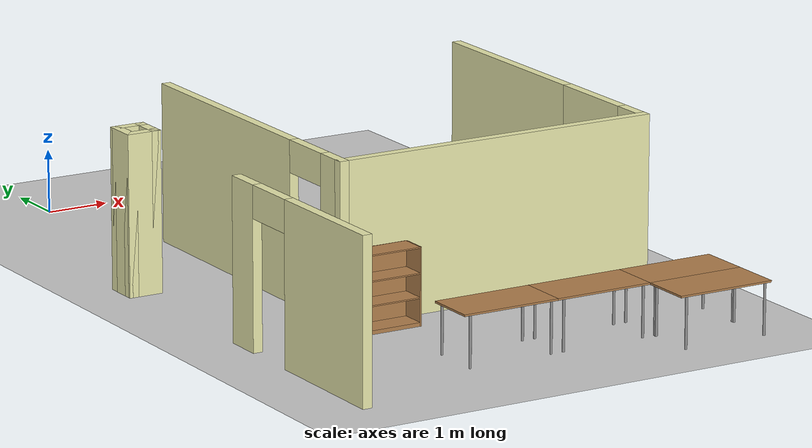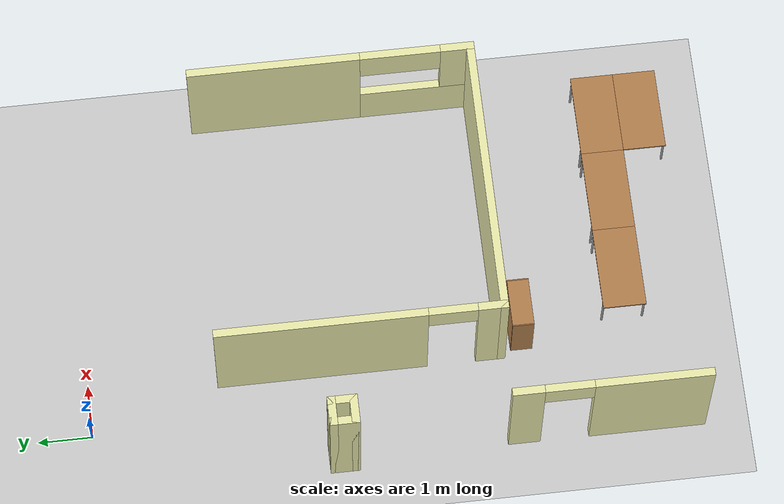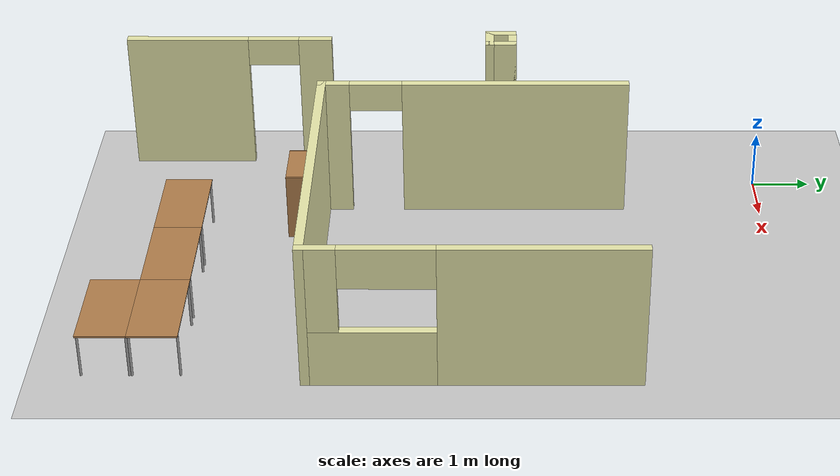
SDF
<sdf version="1.6">
 <world name="default">
  <model name="ground_plane">
   <static>1</static>
   <link name="link">
    <collision name="collision">
     <geometry><plane><normal>0 0 1</normal><size>100 100</size></plane></geometry>
     <surface><friction><ode><mu>100</mu><mu2>50</mu2></ode></friction></surface>
    </collision>
    <visual name="visual">
     <cast_shadows>0</cast_shadows>
     <geometry><plane><normal>0 0 1</normal><size>100 100</size></plane></geometry>
     <material>
      <script><uri>file://media/materials/scripts/gazebo.material</uri><name>Gazebo/Grey</name></script>
     </material>
    </visual>
   </link>
  </model>
  <model name="Building">
   <link name="Wall_10">
    <pose>6 -5.06361 0 0 0 -1.5708</pose>
    <visual name="Wall_10_Visual_0">
     <pose>-1.06584 0 1.25 0 -0 0</pose>
     <geometry><box><size>3.21833 0.15 2.5</size></box></geometry>
     <material>
      <script><uri>file://media/materials/scripts/gazebo.material</uri><name>Gazebo/Grey</name></script>
      <ambient>0.92 0.92 0.68 1</ambient>
     </material>
     <meta><layer>0</layer></meta>
    </visual>
    <collision name="Wall_10_Collision_0">
     <geometry><box><size>3.21833 0.15 2.5</size></box></geometry>
     <pose>-1.06584 0 1.25 0 -0 0</pose>
    </collision>
    <visual name="Wall_10_Visual_1">
     <pose>1.60916 0 0.5 0 -0 0</pose>
     <geometry><box><size>2.13167 0.15 1</size></box></geometry>
     <material>
      <script><uri>file://media/materials/scripts/gazebo.material</uri><name>Gazebo/Grey</name></script>
      <ambient>0.92 0.92 0.68 1</ambient>
     </material>
     <meta><layer>0</layer></meta>
    </visual>
    <collision name="Wall_10_Collision_1">
     <geometry><box><size>2.13167 0.15 1</size></box></geometry>
     <pose>1.60916 0 0.5 0 -0 0</pose>
    </collision>
    <visual name="Wall_10_Visual_2">
     <pose>2.35916 0 1.75 0 -0 0</pose>
     <geometry><box><size>0.631674 0.15 1.5</size></box></geometry>
     <material>
      <script><uri>file://media/materials/scripts/gazebo.material</uri><name>Gazebo/Grey</name></script>
      <ambient>0.92 0.92 0.68 1</ambient>
     </material>
     <meta><layer>0</layer></meta>
    </visual>
    <collision name="Wall_10_Collision_2">
     <geometry><box><size>0.631674 0.15 1.5</size></box></geometry>
     <pose>2.35916 0 1.75 0 -0 0</pose>
    </collision>
    <visual name="Wall_10_Visual_3">
     <pose>1.29333 0 2.15 0 -0 0</pose>
     <geometry><box><size>1.5 0.15 0.7</size></box></geometry>
     <material>
      <script><uri>file://media/materials/scripts/gazebo.material</uri><name>Gazebo/Grey</name></script>
      <ambient>0.92 0.92 0.68 1</ambient>
     </material>
     <meta><layer>0</layer></meta>
    </visual>
    <collision name="Wall_10_Collision_3">
     <geometry><box><size>1.5 0.15 0.7</size></box></geometry>
     <pose>1.29333 0 2.15 0 -0 0</pose>
    </collision>
   </link>
   <link name="Wall_4">
    <collision name="Wall_4_Collision">
     <geometry><box><size>5.35 0.15 2.5</size></box></geometry>
     <pose>0 0 1.25 0 -0 0</pose>
    </collision>
    <visual name="Wall_4_Visual">
     <pose>0 0 1.25 0 -0 0</pose>
     <geometry><box><size>5.35 0.15 2.5</size></box></geometry>
     <material>
      <script><uri>file://media/materials/scripts/gazebo.material</uri><name>Gazebo/Grey</name></script>
      <ambient>0.92 0.92 0.68 1</ambient>
     </material>
     <meta><layer>0</layer></meta>
    </visual>
    <pose>3.4 -7.66361 0 0 -0 0</pose>
   </link>
   <link name="Wall_57">
    <pose>-0.9 -9.41361 0 0 0 -1.5708</pose>
    <visual name="Wall_57_Visual_0">
     <pose>-1.52984 0 1.25 0 -0 0</pose>
     <geometry><box><size>0.59032 0.15 2.5</size></box></geometry>
     <material>
      <script><uri>file://media/materials/scripts/gazebo.material</uri><name>Gazebo/Grey</name></script>
      <ambient>0.92 0.92 0.68 1</ambient>
     </material>
     <meta><layer>0</layer></meta>
    </visual>
    <collision name="Wall_57_Collision_0">
     <geometry><box><size>0.59032 0.15 2.5</size></box></geometry>
     <pose>-1.52984 0 1.25 0 -0 0</pose>
    </collision>
    <visual name="Wall_57_Visual_1">
     <pose>0.74516 0 1.25 0 -0 0</pose>
     <geometry><box><size>2.15968 0.15 2.5</size></box></geometry>
     <material>
      <script><uri>file://media/materials/scripts/gazebo.material</uri><name>Gazebo/Grey</name></script>
      <ambient>0.92 0.92 0.68 1</ambient>
     </material>
     <meta><layer>0</layer></meta>
    </visual>
    <collision name="Wall_57_Collision_1">
     <geometry><box><size>2.15968 0.15 2.5</size></box></geometry>
     <pose>0.74516 0 1.25 0 -0 0</pose>
    </collision>
    <visual name="Wall_57_Visual_2">
     <pose>-0.78468 0 2.25 0 -0 0</pose>
     <geometry><box><size>0.9 0.15 0.5</size></box></geometry>
     <material>
      <script><uri>file://media/materials/scripts/gazebo.material</uri><name>Gazebo/Grey</name></script>
      <ambient>0.92 0.92 0.68 1</ambient>
     </material>
     <meta><layer>0</layer></meta>
    </visual>
    <collision name="Wall_57_Collision_2">
     <geometry><box><size>0.9 0.15 0.5</size></box></geometry>
     <pose>-0.78468 0 2.25 0 -0 0</pose>
    </collision>
   </link>
   <link name="Wall_6">
    <pose>0.8 -5.06361 0 0 -0 1.5708</pose>
    <visual name="Wall_6_Visual_0">
     <pose>-2.39762 0 1.25 0 -0 0</pose>
     <geometry><box><size>0.55477 0.15 2.5</size></box></geometry>
     <material>
      <script><uri>file://media/materials/scripts/gazebo.material</uri><name>Gazebo/Grey</name></script>
      <ambient>0.92 0.92 0.68 1</ambient>
     </material>
     <meta><layer>0</layer></meta>
    </visual>
    <collision name="Wall_6_Collision_0">
     <geometry><box><size>0.55477 0.15 2.5</size></box></geometry>
     <pose>-2.39762 0 1.25 0 -0 0</pose>
    </collision>
    <visual name="Wall_6_Visual_1">
     <pose>0.727385 0 1.25 0 -0 0</pose>
     <geometry><box><size>3.89523 0.15 2.5</size></box></geometry>
     <material>
      <script><uri>file://media/materials/scripts/gazebo.material</uri><name>Gazebo/Grey</name></script>
      <ambient>0.92 0.92 0.68 1</ambient>
     </material>
     <meta><layer>0</layer></meta>
    </visual>
    <collision name="Wall_6_Collision_1">
     <geometry><box><size>3.89523 0.15 2.5</size></box></geometry>
     <pose>0.727385 0 1.25 0 -0 0</pose>
    </collision>
    <visual name="Wall_6_Visual_2">
     <pose>-1.67023 0 2.25 0 -0 0</pose>
     <geometry><box><size>0.9 0.15 0.5</size></box></geometry>
     <material>
      <script><uri>file://media/materials/scripts/gazebo.material</uri><name>Gazebo/Grey</name></script>
      <ambient>0.92 0.92 0.68 1</ambient>
     </material>
     <meta><layer>0</layer></meta>
    </visual>
    <collision name="Wall_6_Collision_2">
     <geometry><box><size>0.9 0.15 0.5</size></box></geometry>
     <pose>-1.67023 0 2.25 0 -0 0</pose>
    </collision>
   </link>
   <link name="Wall_80">
    <collision name="Wall_80_Collision">
     <geometry><box><size>0.55 0.15 2.5</size></box></geometry>
     <pose>0 0 1.25 0 -0 0</pose>
    </collision>
    <visual name="Wall_80_Visual">
     <pose>0 0 1.25 0 -0 0</pose>
     <geometry><box><size>0.55 0.15 2.5</size></box></geometry>
     <material>
      <script><uri>file://media/materials/scripts/gazebo.material</uri><name>Gazebo/Grey</name></script>
      <ambient>0.92 0.92 0.68 1</ambient>
     </material>
     <meta><layer>0</layer></meta>
    </visual>
    <pose>-0.9 -4.76361 0 0 -0 0</pose>
   </link>
   <link name="Wall_82">
    <collision name="Wall_82_Collision">
     <geometry><box><size>0.55 0.15 2.5</size></box></geometry>
     <pose>0 0 1.25 0 -0 0</pose>
    </collision>
    <visual name="Wall_82_Visual">
     <pose>0 0 1.25 0 -0 0</pose>
     <geometry><box><size>0.55 0.15 2.5</size></box></geometry>
     <material>
      <script><uri>file://media/materials/scripts/gazebo.material</uri><name>Gazebo/Grey</name></script>
      <ambient>0.92 0.92 0.68 1</ambient>
     </material>
     <meta><layer>0</layer></meta>
    </visual>
    <pose>-0.9 -4.36361 0 0 -0 0</pose>
   </link>
   <link name="Wall_84">
    <collision name="Wall_84_Collision">
     <geometry><box><size>0.55 0.15 2.5</size></box></geometry>
     <pose>0 0 1.25 0 -0 0</pose>
    </collision>
    <visual name="Wall_84_Visual">
     <pose>0 0 1.25 0 -0 0</pose>
     <geometry><box><size>0.55 0.15 2.5</size></box></geometry>
     <material>
      <script><uri>file://media/materials/scripts/gazebo.material</uri><name>Gazebo/Grey</name></script>
      <ambient>0.92 0.92 0.68 1</ambient>
     </material>
     <meta><layer>0</layer></meta>
    </visual>
    <pose>-1.1 -4.56361 0 0 0 -1.5708</pose>
   </link>
   <link name="Wall_86">
    <collision name="Wall_86_Collision">
     <geometry><box><size>0.55 0.15 2.5</size></box></geometry>
     <pose>0 0 1.25 0 -0 0</pose>
    </collision>
    <visual name="Wall_86_Visual">
     <pose>0 0 1.25 0 -0 0</pose>
     <geometry><box><size>0.55 0.15 2.5</size></box></geometry>
     <material>
      <script><uri>file://media/materials/scripts/gazebo.material</uri><name>Gazebo/Grey</name></script>
      <ambient>0.92 0.92 0.68 1</ambient>
     </material>
     <meta><layer>0</layer></meta>
    </visual>
    <pose>-0.7 -4.56361 0 0 0 -1.5708</pose>
   </link>
   <static>1</static>
  </model>
  <model name="tablealt_0_clone_42">
   <link name="link">
    <inertial>
     <mass>1</mass>
     <inertia><ixx>1</ixx><ixy>0</ixy><ixz>0</ixz><iyy>1</iyy><iyz>0</iyz><izz>1</izz></inertia>
    </inertial>
    <visual name="back_right_leg">
     <pose>-0.68 -0.38 0.4 0 -0 0</pose>
     <geometry><cylinder><radius>0.02</radius><length>0.8</length></cylinder></geometry>
     <material>
      <script><uri>file://media/materials/scripts/gazebo.material</uri><name>Gazebo/Grey</name></script>
      <shader type="pixel"><normal_map>__default__</normal_map></shader>
      <ambient>0.3 0.3 0.3 1</ambient>
      <diffuse>0.7 0.7 0.7 1</diffuse>
      <specular>0.01 0.01 0.01 1</specular>
      <emissive>0 0 0 1</emissive>
     </material>
    </visual>
    <visual name="back_left_leg">
     <pose>-0.68 0.38 0.4 0 -0 0</pose>
     <geometry><cylinder><radius>0.02</radius><length>0.8</length></cylinder></geometry>
     <material>
      <script><uri>file://media/materials/scripts/gazebo.material</uri><name>Gazebo/Grey</name></script>
      <shader type="pixel"><normal_map>__default__</normal_map></shader>
      <ambient>0.3 0.3 0.3 1</ambient>
      <diffuse>0.7 0.7 0.7 1</diffuse>
      <specular>0.01 0.01 0.01 1</specular>
      <emissive>0 0 0 1</emissive>
     </material>
    </visual>
    <visual name="visual1">
     <pose>0 0 0.8 0 -0 0</pose>
     <geometry><box><size>1.57 0.8 0.03</size></box></geometry>
     <material>
      <script><uri>file://media/materials/scripts/gazebo.material</uri><name>Gazebo/Wood</name></script>
      <shader type="pixel"><normal_map>__default__</normal_map></shader>
      <ambient>0.92 0.92 0.68 1</ambient>
      <diffuse>1 1 1 1</diffuse>
      <specular>0.2 0.2 0.2 1</specular>
      <emissive>0 0 0 1</emissive>
     </material>
    </visual>
    <visual name="front_left_leg">
     <pose>0.68 0.38 0.4 0 -0 0</pose>
     <geometry><cylinder><radius>0.02</radius><length>0.8</length></cylinder></geometry>
     <material>
      <script><uri>file://media/materials/scripts/gazebo.material</uri><name>Gazebo/Grey</name></script>
      <shader type="pixel"><normal_map>__default__</normal_map></shader>
      <ambient>0.3 0.3 0.3 1</ambient>
      <diffuse>0.7 0.7 0.7 1</diffuse>
      <specular>0.01 0.01 0.01 1</specular>
      <emissive>0 0 0 1</emissive>
     </material>
    </visual>
    <visual name="front_right_leg">
     <pose>0.68 -0.38 0.4 0 -0 0</pose>
     <geometry><cylinder><radius>0.02</radius><length>0.8</length></cylinder></geometry>
     <material>
      <script><uri>file://media/materials/scripts/gazebo.material</uri><name>Gazebo/Grey</name></script>
      <shader type="pixel"><normal_map>__default__</normal_map></shader>
      <ambient>0.3 0.3 0.3 1</ambient>
      <diffuse>0.7 0.7 0.7 1</diffuse>
      <specular>0.01 0.01 0.01 1</specular>
      <emissive>0 0 0 1</emissive>
     </material>
    </visual>
    <collision name="front_right_leg">
     <pose>0.68 -0.38 0.4 0 -0 0</pose>
     <geometry><cylinder><radius>0.02</radius><length>0.8</length></cylinder></geometry>
     <surface>
      <friction>
       <ode><mu>1</mu><mu2>1</mu2><fdir1>0 0 0</fdir1><slip1>0</slip1><slip2>0</slip2></ode>
       <torsional>
        <coefficient>1</coefficient>
        <patch_radius>0</patch_radius>
        <surface_radius>0</surface_radius>
        <use_patch_radius>1</use_patch_radius>
        <ode><slip>0</slip></ode>
       </torsional>
      </friction>
      <bounce><restitution_coefficient>0</restitution_coefficient><threshold>1e+06</threshold></bounce>
      <contact>
       <collide_without_contact>0</collide_without_contact>
       <collide_without_contact_bitmask>1</collide_without_contact_bitmask>
       <collide_bitmask>1</collide_bitmask>
       <ode>
        <soft_cfm>0</soft_cfm>
        <soft_erp>0.2</soft_erp>
        <kp>1e+13</kp>
        <kd>1</kd>
        <max_vel>0.01</max_vel>
        <min_depth>0</min_depth>
       </ode>
       <bullet>
        <split_impulse>1</split_impulse>
        <split_impulse_penetration_threshold>-0.01</split_impulse_penetration_threshold>
        <soft_cfm>0</soft_cfm>
        <soft_erp>0.2</soft_erp>
        <kp>1e+13</kp>
        <kd>1</kd>
       </bullet>
      </contact>
     </surface>
    </collision>
    <collision name="surface">
     <pose>0 0 0.8 0 -0 0</pose>
     <geometry><box><size>1.5 0.8 0.03</size></box></geometry>
     <surface>
      <friction>
       <ode><mu>0.6</mu><mu2>0.6</mu2><fdir1>0 0 0</fdir1><slip1>0</slip1><slip2>0</slip2></ode>
       <torsional>
        <coefficient>1</coefficient>
        <patch_radius>0</patch_radius>
        <surface_radius>0</surface_radius>
        <use_patch_radius>1</use_patch_radius>
        <ode><slip>0</slip></ode>
       </torsional>
      </friction>
      <bounce><restitution_coefficient>0</restitution_coefficient><threshold>1e+06</threshold></bounce>
      <contact>
       <collide_without_contact>0</collide_without_contact>
       <collide_without_contact_bitmask>1</collide_without_contact_bitmask>
       <collide_bitmask>1</collide_bitmask>
       <ode>
        <soft_cfm>0</soft_cfm>
        <soft_erp>0.2</soft_erp>
        <kp>1e+13</kp>
        <kd>1</kd>
        <max_vel>0.01</max_vel>
        <min_depth>0</min_depth>
       </ode>
       <bullet>
        <split_impulse>1</split_impulse>
        <split_impulse_penetration_threshold>-0.01</split_impulse_penetration_threshold>
        <soft_cfm>0</soft_cfm>
        <soft_erp>0.2</soft_erp>
        <kp>1e+13</kp>
        <kd>1</kd>
       </bullet>
      </contact>
     </surface>
    </collision>
    <collision name="front_left_leg">
     <pose>0.68 0.38 0.4 0 -0 0</pose>
     <geometry><cylinder><radius>0.02</radius><length>0.8</length></cylinder></geometry>
     <surface>
      <friction>
       <ode><mu>1</mu><mu2>1</mu2><fdir1>0 0 0</fdir1><slip1>0</slip1><slip2>0</slip2></ode>
       <torsional>
        <coefficient>1</coefficient>
        <patch_radius>0</patch_radius>
        <surface_radius>0</surface_radius>
        <use_patch_radius>1</use_patch_radius>
        <ode><slip>0</slip></ode>
       </torsional>
      </friction>
      <bounce><restitution_coefficient>0</restitution_coefficient><threshold>1e+06</threshold></bounce>
      <contact>
       <collide_without_contact>0</collide_without_contact>
       <collide_without_contact_bitmask>1</collide_without_contact_bitmask>
       <collide_bitmask>1</collide_bitmask>
       <ode>
        <soft_cfm>0</soft_cfm>
        <soft_erp>0.2</soft_erp>
        <kp>1e+13</kp>
        <kd>1</kd>
        <max_vel>0.01</max_vel>
        <min_depth>0</min_depth>
       </ode>
       <bullet>
        <split_impulse>1</split_impulse>
        <split_impulse_penetration_threshold>-0.01</split_impulse_penetration_threshold>
        <soft_cfm>0</soft_cfm>
        <soft_erp>0.2</soft_erp>
        <kp>1e+13</kp>
        <kd>1</kd>
       </bullet>
      </contact>
     </surface>
    </collision>
    <collision name="back_left_leg">
     <pose>-0.68 0.38 0.4 0 -0 0</pose>
     <geometry><cylinder><radius>0.02</radius><length>0.8</length></cylinder></geometry>
     <surface>
      <friction>
       <ode><mu>1</mu><mu2>1</mu2><fdir1>0 0 0</fdir1><slip1>0</slip1><slip2>0</slip2></ode>
       <torsional>
        <coefficient>1</coefficient>
        <patch_radius>0</patch_radius>
        <surface_radius>0</surface_radius>
        <use_patch_radius>1</use_patch_radius>
        <ode><slip>0</slip></ode>
       </torsional>
      </friction>
      <bounce><restitution_coefficient>0</restitution_coefficient><threshold>1e+06</threshold></bounce>
      <contact>
       <collide_without_contact>0</collide_without_contact>
       <collide_without_contact_bitmask>1</collide_without_contact_bitmask>
       <collide_bitmask>1</collide_bitmask>
       <ode>
        <soft_cfm>0</soft_cfm>
        <soft_erp>0.2</soft_erp>
        <kp>1e+13</kp>
        <kd>1</kd>
        <max_vel>0.01</max_vel>
        <min_depth>0</min_depth>
       </ode>
       <bullet>
        <split_impulse>1</split_impulse>
        <split_impulse_penetration_threshold>-0.01</split_impulse_penetration_threshold>
        <soft_cfm>0</soft_cfm>
        <soft_erp>0.2</soft_erp>
        <kp>1e+13</kp>
        <kd>1</kd>
       </bullet>
      </contact>
     </surface>
    </collision>
    <collision name="back_right_leg">
     <pose>-0.68 -0.38 0.4 0 -0 0</pose>
     <geometry><cylinder><radius>0.02</radius><length>0.8</length></cylinder></geometry>
     <surface>
      <friction>
       <ode><mu>1</mu><mu2>1</mu2><fdir1>0 0 0</fdir1><slip1>0</slip1><slip2>0</slip2></ode>
       <torsional>
        <coefficient>1</coefficient>
        <patch_radius>0</patch_radius>
        <surface_radius>0</surface_radius>
        <use_patch_radius>1</use_patch_radius>
        <ode><slip>0</slip></ode>
       </torsional>
      </friction>
      <bounce><restitution_coefficient>0</restitution_coefficient><threshold>1e+06</threshold></bounce>
      <contact>
       <collide_without_contact>0</collide_without_contact>
       <collide_without_contact_bitmask>1</collide_without_contact_bitmask>
       <collide_bitmask>1</collide_bitmask>
       <ode>
        <soft_cfm>0</soft_cfm>
        <soft_erp>0.2</soft_erp>
        <kp>1e+13</kp>
        <kd>1</kd>
        <max_vel>0.01</max_vel>
        <min_depth>0</min_depth>
       </ode>
       <bullet>
        <split_impulse>1</split_impulse>
        <split_impulse_penetration_threshold>-0.01</split_impulse_penetration_threshold>
        <soft_cfm>0</soft_cfm>
        <soft_erp>0.2</soft_erp>
        <kp>1e+13</kp>
        <kd>1</kd>
       </bullet>
      </contact>
     </surface>
    </collision>
   </link>
   <static>1</static>
   <pose>1.98 -10 0 0 -0 0</pose>
  </model>
  <model name="tablealt_0_clone_43">
   <link name="link">
    <inertial>
     <mass>1</mass>
     <inertia><ixx>1</ixx><ixy>0</ixy><ixz>0</ixz><iyy>1</iyy><iyz>0</iyz><izz>1</izz></inertia>
    </inertial>
    <visual name="back_right_leg">
     <pose>-0.68 -0.38 0.4 0 -0 0</pose>
     <geometry><cylinder><radius>0.02</radius><length>0.8</length></cylinder></geometry>
     <material>
      <script><uri>file://media/materials/scripts/gazebo.material</uri><name>Gazebo/Grey</name></script>
      <shader type="pixel"><normal_map>__default__</normal_map></shader>
      <ambient>0.3 0.3 0.3 1</ambient>
      <diffuse>0.7 0.7 0.7 1</diffuse>
      <specular>0.01 0.01 0.01 1</specular>
      <emissive>0 0 0 1</emissive>
     </material>
    </visual>
    <visual name="back_left_leg">
     <pose>-0.68 0.38 0.4 0 -0 0</pose>
     <geometry><cylinder><radius>0.02</radius><length>0.8</length></cylinder></geometry>
     <material>
      <script><uri>file://media/materials/scripts/gazebo.material</uri><name>Gazebo/Grey</name></script>
      <shader type="pixel"><normal_map>__default__</normal_map></shader>
      <ambient>0.3 0.3 0.3 1</ambient>
      <diffuse>0.7 0.7 0.7 1</diffuse>
      <specular>0.01 0.01 0.01 1</specular>
      <emissive>0 0 0 1</emissive>
     </material>
    </visual>
    <visual name="visual1">
     <pose>0 0 0.8 0 -0 0</pose>
     <geometry><box><size>1.57 0.8 0.03</size></box></geometry>
     <material>
      <script><uri>file://media/materials/scripts/gazebo.material</uri><name>Gazebo/Wood</name></script>
      <shader type="pixel"><normal_map>__default__</normal_map></shader>
      <ambient>0.92 0.92 0.68 1</ambient>
      <diffuse>1 1 1 1</diffuse>
      <specular>0.2 0.2 0.2 1</specular>
      <emissive>0 0 0 1</emissive>
     </material>
    </visual>
    <visual name="front_left_leg">
     <pose>0.68 0.38 0.4 0 -0 0</pose>
     <geometry><cylinder><radius>0.02</radius><length>0.8</length></cylinder></geometry>
     <material>
      <script><uri>file://media/materials/scripts/gazebo.material</uri><name>Gazebo/Grey</name></script>
      <shader type="pixel"><normal_map>__default__</normal_map></shader>
      <ambient>0.3 0.3 0.3 1</ambient>
      <diffuse>0.7 0.7 0.7 1</diffuse>
      <specular>0.01 0.01 0.01 1</specular>
      <emissive>0 0 0 1</emissive>
     </material>
    </visual>
    <visual name="front_right_leg">
     <pose>0.68 -0.38 0.4 0 -0 0</pose>
     <geometry><cylinder><radius>0.02</radius><length>0.8</length></cylinder></geometry>
     <material>
      <script><uri>file://media/materials/scripts/gazebo.material</uri><name>Gazebo/Grey</name></script>
      <shader type="pixel"><normal_map>__default__</normal_map></shader>
      <ambient>0.3 0.3 0.3 1</ambient>
      <diffuse>0.7 0.7 0.7 1</diffuse>
      <specular>0.01 0.01 0.01 1</specular>
      <emissive>0 0 0 1</emissive>
     </material>
    </visual>
    <collision name="front_right_leg">
     <pose>0.68 -0.38 0.4 0 -0 0</pose>
     <geometry><cylinder><radius>0.02</radius><length>0.8</length></cylinder></geometry>
     <surface>
      <friction>
       <ode><mu>1</mu><mu2>1</mu2><fdir1>0 0 0</fdir1><slip1>0</slip1><slip2>0</slip2></ode>
       <torsional>
        <coefficient>1</coefficient>
        <patch_radius>0</patch_radius>
        <surface_radius>0</surface_radius>
        <use_patch_radius>1</use_patch_radius>
        <ode><slip>0</slip></ode>
       </torsional>
      </friction>
      <bounce><restitution_coefficient>0</restitution_coefficient><threshold>1e+06</threshold></bounce>
      <contact>
       <collide_without_contact>0</collide_without_contact>
       <collide_without_contact_bitmask>1</collide_without_contact_bitmask>
       <collide_bitmask>1</collide_bitmask>
       <ode>
        <soft_cfm>0</soft_cfm>
        <soft_erp>0.2</soft_erp>
        <kp>1e+13</kp>
        <kd>1</kd>
        <max_vel>0.01</max_vel>
        <min_depth>0</min_depth>
       </ode>
       <bullet>
        <split_impulse>1</split_impulse>
        <split_impulse_penetration_threshold>-0.01</split_impulse_penetration_threshold>
        <soft_cfm>0</soft_cfm>
        <soft_erp>0.2</soft_erp>
        <kp>1e+13</kp>
        <kd>1</kd>
       </bullet>
      </contact>
     </surface>
    </collision>
    <collision name="surface">
     <pose>0 0 0.8 0 -0 0</pose>
     <geometry><box><size>1.5 0.8 0.03</size></box></geometry>
     <surface>
      <friction>
       <ode><mu>0.6</mu><mu2>0.6</mu2><fdir1>0 0 0</fdir1><slip1>0</slip1><slip2>0</slip2></ode>
       <torsional>
        <coefficient>1</coefficient>
        <patch_radius>0</patch_radius>
        <surface_radius>0</surface_radius>
        <use_patch_radius>1</use_patch_radius>
        <ode><slip>0</slip></ode>
       </torsional>
      </friction>
      <bounce><restitution_coefficient>0</restitution_coefficient><threshold>1e+06</threshold></bounce>
      <contact>
       <collide_without_contact>0</collide_without_contact>
       <collide_without_contact_bitmask>1</collide_without_contact_bitmask>
       <collide_bitmask>1</collide_bitmask>
       <ode>
        <soft_cfm>0</soft_cfm>
        <soft_erp>0.2</soft_erp>
        <kp>1e+13</kp>
        <kd>1</kd>
        <max_vel>0.01</max_vel>
        <min_depth>0</min_depth>
       </ode>
       <bullet>
        <split_impulse>1</split_impulse>
        <split_impulse_penetration_threshold>-0.01</split_impulse_penetration_threshold>
        <soft_cfm>0</soft_cfm>
        <soft_erp>0.2</soft_erp>
        <kp>1e+13</kp>
        <kd>1</kd>
       </bullet>
      </contact>
     </surface>
    </collision>
    <collision name="front_left_leg">
     <pose>0.68 0.38 0.4 0 -0 0</pose>
     <geometry><cylinder><radius>0.02</radius><length>0.8</length></cylinder></geometry>
     <surface>
      <friction>
       <ode><mu>1</mu><mu2>1</mu2><fdir1>0 0 0</fdir1><slip1>0</slip1><slip2>0</slip2></ode>
       <torsional>
        <coefficient>1</coefficient>
        <patch_radius>0</patch_radius>
        <surface_radius>0</surface_radius>
        <use_patch_radius>1</use_patch_radius>
        <ode><slip>0</slip></ode>
       </torsional>
      </friction>
      <bounce><restitution_coefficient>0</restitution_coefficient><threshold>1e+06</threshold></bounce>
      <contact>
       <collide_without_contact>0</collide_without_contact>
       <collide_without_contact_bitmask>1</collide_without_contact_bitmask>
       <collide_bitmask>1</collide_bitmask>
       <ode>
        <soft_cfm>0</soft_cfm>
        <soft_erp>0.2</soft_erp>
        <kp>1e+13</kp>
        <kd>1</kd>
        <max_vel>0.01</max_vel>
        <min_depth>0</min_depth>
       </ode>
       <bullet>
        <split_impulse>1</split_impulse>
        <split_impulse_penetration_threshold>-0.01</split_impulse_penetration_threshold>
        <soft_cfm>0</soft_cfm>
        <soft_erp>0.2</soft_erp>
        <kp>1e+13</kp>
        <kd>1</kd>
       </bullet>
      </contact>
     </surface>
    </collision>
    <collision name="back_left_leg">
     <pose>-0.68 0.38 0.4 0 -0 0</pose>
     <geometry><cylinder><radius>0.02</radius><length>0.8</length></cylinder></geometry>
     <surface>
      <friction>
       <ode><mu>1</mu><mu2>1</mu2><fdir1>0 0 0</fdir1><slip1>0</slip1><slip2>0</slip2></ode>
       <torsional>
        <coefficient>1</coefficient>
        <patch_radius>0</patch_radius>
        <surface_radius>0</surface_radius>
        <use_patch_radius>1</use_patch_radius>
        <ode><slip>0</slip></ode>
       </torsional>
      </friction>
      <bounce><restitution_coefficient>0</restitution_coefficient><threshold>1e+06</threshold></bounce>
      <contact>
       <collide_without_contact>0</collide_without_contact>
       <collide_without_contact_bitmask>1</collide_without_contact_bitmask>
       <collide_bitmask>1</collide_bitmask>
       <ode>
        <soft_cfm>0</soft_cfm>
        <soft_erp>0.2</soft_erp>
        <kp>1e+13</kp>
        <kd>1</kd>
        <max_vel>0.01</max_vel>
        <min_depth>0</min_depth>
       </ode>
       <bullet>
        <split_impulse>1</split_impulse>
        <split_impulse_penetration_threshold>-0.01</split_impulse_penetration_threshold>
        <soft_cfm>0</soft_cfm>
        <soft_erp>0.2</soft_erp>
        <kp>1e+13</kp>
        <kd>1</kd>
       </bullet>
      </contact>
     </surface>
    </collision>
    <collision name="back_right_leg">
     <pose>-0.68 -0.38 0.4 0 -0 0</pose>
     <geometry><cylinder><radius>0.02</radius><length>0.8</length></cylinder></geometry>
     <surface>
      <friction>
       <ode><mu>1</mu><mu2>1</mu2><fdir1>0 0 0</fdir1><slip1>0</slip1><slip2>0</slip2></ode>
       <torsional>
        <coefficient>1</coefficient>
        <patch_radius>0</patch_radius>
        <surface_radius>0</surface_radius>
        <use_patch_radius>1</use_patch_radius>
        <ode><slip>0</slip></ode>
       </torsional>
      </friction>
      <bounce><restitution_coefficient>0</restitution_coefficient><threshold>1e+06</threshold></bounce>
      <contact>
       <collide_without_contact>0</collide_without_contact>
       <collide_without_contact_bitmask>1</collide_without_contact_bitmask>
       <collide_bitmask>1</collide_bitmask>
       <ode>
        <soft_cfm>0</soft_cfm>
        <soft_erp>0.2</soft_erp>
        <kp>1e+13</kp>
        <kd>1</kd>
        <max_vel>0.01</max_vel>
        <min_depth>0</min_depth>
       </ode>
       <bullet>
        <split_impulse>1</split_impulse>
        <split_impulse_penetration_threshold>-0.01</split_impulse_penetration_threshold>
        <soft_cfm>0</soft_cfm>
        <soft_erp>0.2</soft_erp>
        <kp>1e+13</kp>
        <kd>1</kd>
       </bullet>
      </contact>
     </surface>
    </collision>
   </link>
   <static>1</static>
   <pose>3.55 -10 0 0 -0 0</pose>
  </model>
  <model name="tablealt_0_clone_44">
   <link name="link">
    <inertial>
     <mass>1</mass>
     <inertia><ixx>1</ixx><ixy>0</ixy><ixz>0</ixz><iyy>1</iyy><iyz>0</iyz><izz>1</izz></inertia>
    </inertial>
    <visual name="back_right_leg">
     <pose>-0.68 -0.38 0.4 0 -0 0</pose>
     <geometry><cylinder><radius>0.02</radius><length>0.8</length></cylinder></geometry>
     <material>
      <script><uri>file://media/materials/scripts/gazebo.material</uri><name>Gazebo/Grey</name></script>
      <shader type="pixel"><normal_map>__default__</normal_map></shader>
      <ambient>0.3 0.3 0.3 1</ambient>
      <diffuse>0.7 0.7 0.7 1</diffuse>
      <specular>0.01 0.01 0.01 1</specular>
      <emissive>0 0 0 1</emissive>
     </material>
    </visual>
    <visual name="back_left_leg">
     <pose>-0.68 0.38 0.4 0 -0 0</pose>
     <geometry><cylinder><radius>0.02</radius><length>0.8</length></cylinder></geometry>
     <material>
      <script><uri>file://media/materials/scripts/gazebo.material</uri><name>Gazebo/Grey</name></script>
      <shader type="pixel"><normal_map>__default__</normal_map></shader>
      <ambient>0.3 0.3 0.3 1</ambient>
      <diffuse>0.7 0.7 0.7 1</diffuse>
      <specular>0.01 0.01 0.01 1</specular>
      <emissive>0 0 0 1</emissive>
     </material>
    </visual>
    <visual name="visual1">
     <pose>0 0 0.8 0 -0 0</pose>
     <geometry><box><size>1.57 0.8 0.03</size></box></geometry>
     <material>
      <script><uri>file://media/materials/scripts/gazebo.material</uri><name>Gazebo/Wood</name></script>
      <shader type="pixel"><normal_map>__default__</normal_map></shader>
      <ambient>0.92 0.92 0.68 1</ambient>
      <diffuse>1 1 1 1</diffuse>
      <specular>0.2 0.2 0.2 1</specular>
      <emissive>0 0 0 1</emissive>
     </material>
    </visual>
    <visual name="front_left_leg">
     <pose>0.68 0.38 0.4 0 -0 0</pose>
     <geometry><cylinder><radius>0.02</radius><length>0.8</length></cylinder></geometry>
     <material>
      <script><uri>file://media/materials/scripts/gazebo.material</uri><name>Gazebo/Grey</name></script>
      <shader type="pixel"><normal_map>__default__</normal_map></shader>
      <ambient>0.3 0.3 0.3 1</ambient>
      <diffuse>0.7 0.7 0.7 1</diffuse>
      <specular>0.01 0.01 0.01 1</specular>
      <emissive>0 0 0 1</emissive>
     </material>
    </visual>
    <visual name="front_right_leg">
     <pose>0.68 -0.38 0.4 0 -0 0</pose>
     <geometry><cylinder><radius>0.02</radius><length>0.8</length></cylinder></geometry>
     <material>
      <script><uri>file://media/materials/scripts/gazebo.material</uri><name>Gazebo/Grey</name></script>
      <shader type="pixel"><normal_map>__default__</normal_map></shader>
      <ambient>0.3 0.3 0.3 1</ambient>
      <diffuse>0.7 0.7 0.7 1</diffuse>
      <specular>0.01 0.01 0.01 1</specular>
      <emissive>0 0 0 1</emissive>
     </material>
    </visual>
    <collision name="front_right_leg">
     <pose>0.68 -0.38 0.4 0 -0 0</pose>
     <geometry><cylinder><radius>0.02</radius><length>0.8</length></cylinder></geometry>
     <surface>
      <friction>
       <ode><mu>1</mu><mu2>1</mu2><fdir1>0 0 0</fdir1><slip1>0</slip1><slip2>0</slip2></ode>
       <torsional>
        <coefficient>1</coefficient>
        <patch_radius>0</patch_radius>
        <surface_radius>0</surface_radius>
        <use_patch_radius>1</use_patch_radius>
        <ode><slip>0</slip></ode>
       </torsional>
      </friction>
      <bounce><restitution_coefficient>0</restitution_coefficient><threshold>1e+06</threshold></bounce>
      <contact>
       <collide_without_contact>0</collide_without_contact>
       <collide_without_contact_bitmask>1</collide_without_contact_bitmask>
       <collide_bitmask>1</collide_bitmask>
       <ode>
        <soft_cfm>0</soft_cfm>
        <soft_erp>0.2</soft_erp>
        <kp>1e+13</kp>
        <kd>1</kd>
        <max_vel>0.01</max_vel>
        <min_depth>0</min_depth>
       </ode>
       <bullet>
        <split_impulse>1</split_impulse>
        <split_impulse_penetration_threshold>-0.01</split_impulse_penetration_threshold>
        <soft_cfm>0</soft_cfm>
        <soft_erp>0.2</soft_erp>
        <kp>1e+13</kp>
        <kd>1</kd>
       </bullet>
      </contact>
     </surface>
    </collision>
    <collision name="surface">
     <pose>0 0 0.8 0 -0 0</pose>
     <geometry><box><size>1.5 0.8 0.03</size></box></geometry>
     <surface>
      <friction>
       <ode><mu>0.6</mu><mu2>0.6</mu2><fdir1>0 0 0</fdir1><slip1>0</slip1><slip2>0</slip2></ode>
       <torsional>
        <coefficient>1</coefficient>
        <patch_radius>0</patch_radius>
        <surface_radius>0</surface_radius>
        <use_patch_radius>1</use_patch_radius>
        <ode><slip>0</slip></ode>
       </torsional>
      </friction>
      <bounce><restitution_coefficient>0</restitution_coefficient><threshold>1e+06</threshold></bounce>
      <contact>
       <collide_without_contact>0</collide_without_contact>
       <collide_without_contact_bitmask>1</collide_without_contact_bitmask>
       <collide_bitmask>1</collide_bitmask>
       <ode>
        <soft_cfm>0</soft_cfm>
        <soft_erp>0.2</soft_erp>
        <kp>1e+13</kp>
        <kd>1</kd>
        <max_vel>0.01</max_vel>
        <min_depth>0</min_depth>
       </ode>
       <bullet>
        <split_impulse>1</split_impulse>
        <split_impulse_penetration_threshold>-0.01</split_impulse_penetration_threshold>
        <soft_cfm>0</soft_cfm>
        <soft_erp>0.2</soft_erp>
        <kp>1e+13</kp>
        <kd>1</kd>
       </bullet>
      </contact>
     </surface>
    </collision>
    <collision name="front_left_leg">
     <pose>0.68 0.38 0.4 0 -0 0</pose>
     <geometry><cylinder><radius>0.02</radius><length>0.8</length></cylinder></geometry>
     <surface>
      <friction>
       <ode><mu>1</mu><mu2>1</mu2><fdir1>0 0 0</fdir1><slip1>0</slip1><slip2>0</slip2></ode>
       <torsional>
        <coefficient>1</coefficient>
        <patch_radius>0</patch_radius>
        <surface_radius>0</surface_radius>
        <use_patch_radius>1</use_patch_radius>
        <ode><slip>0</slip></ode>
       </torsional>
      </friction>
      <bounce><restitution_coefficient>0</restitution_coefficient><threshold>1e+06</threshold></bounce>
      <contact>
       <collide_without_contact>0</collide_without_contact>
       <collide_without_contact_bitmask>1</collide_without_contact_bitmask>
       <collide_bitmask>1</collide_bitmask>
       <ode>
        <soft_cfm>0</soft_cfm>
        <soft_erp>0.2</soft_erp>
        <kp>1e+13</kp>
        <kd>1</kd>
        <max_vel>0.01</max_vel>
        <min_depth>0</min_depth>
       </ode>
       <bullet>
        <split_impulse>1</split_impulse>
        <split_impulse_penetration_threshold>-0.01</split_impulse_penetration_threshold>
        <soft_cfm>0</soft_cfm>
        <soft_erp>0.2</soft_erp>
        <kp>1e+13</kp>
        <kd>1</kd>
       </bullet>
      </contact>
     </surface>
    </collision>
    <collision name="back_left_leg">
     <pose>-0.68 0.38 0.4 0 -0 0</pose>
     <geometry><cylinder><radius>0.02</radius><length>0.8</length></cylinder></geometry>
     <surface>
      <friction>
       <ode><mu>1</mu><mu2>1</mu2><fdir1>0 0 0</fdir1><slip1>0</slip1><slip2>0</slip2></ode>
       <torsional>
        <coefficient>1</coefficient>
        <patch_radius>0</patch_radius>
        <surface_radius>0</surface_radius>
        <use_patch_radius>1</use_patch_radius>
        <ode><slip>0</slip></ode>
       </torsional>
      </friction>
      <bounce><restitution_coefficient>0</restitution_coefficient><threshold>1e+06</threshold></bounce>
      <contact>
       <collide_without_contact>0</collide_without_contact>
       <collide_without_contact_bitmask>1</collide_without_contact_bitmask>
       <collide_bitmask>1</collide_bitmask>
       <ode>
        <soft_cfm>0</soft_cfm>
        <soft_erp>0.2</soft_erp>
        <kp>1e+13</kp>
        <kd>1</kd>
        <max_vel>0.01</max_vel>
        <min_depth>0</min_depth>
       </ode>
       <bullet>
        <split_impulse>1</split_impulse>
        <split_impulse_penetration_threshold>-0.01</split_impulse_penetration_threshold>
        <soft_cfm>0</soft_cfm>
        <soft_erp>0.2</soft_erp>
        <kp>1e+13</kp>
        <kd>1</kd>
       </bullet>
      </contact>
     </surface>
    </collision>
    <collision name="back_right_leg">
     <pose>-0.68 -0.38 0.4 0 -0 0</pose>
     <geometry><cylinder><radius>0.02</radius><length>0.8</length></cylinder></geometry>
     <surface>
      <friction>
       <ode><mu>1</mu><mu2>1</mu2><fdir1>0 0 0</fdir1><slip1>0</slip1><slip2>0</slip2></ode>
       <torsional>
        <coefficient>1</coefficient>
        <patch_radius>0</patch_radius>
        <surface_radius>0</surface_radius>
        <use_patch_radius>1</use_patch_radius>
        <ode><slip>0</slip></ode>
       </torsional>
      </friction>
      <bounce><restitution_coefficient>0</restitution_coefficient><threshold>1e+06</threshold></bounce>
      <contact>
       <collide_without_contact>0</collide_without_contact>
       <collide_without_contact_bitmask>1</collide_without_contact_bitmask>
       <collide_bitmask>1</collide_bitmask>
       <ode>
        <soft_cfm>0</soft_cfm>
        <soft_erp>0.2</soft_erp>
        <kp>1e+13</kp>
        <kd>1</kd>
        <max_vel>0.01</max_vel>
        <min_depth>0</min_depth>
       </ode>
       <bullet>
        <split_impulse>1</split_impulse>
        <split_impulse_penetration_threshold>-0.01</split_impulse_penetration_threshold>
        <soft_cfm>0</soft_cfm>
        <soft_erp>0.2</soft_erp>
        <kp>1e+13</kp>
        <kd>1</kd>
       </bullet>
      </contact>
     </surface>
    </collision>
   </link>
   <static>1</static>
   <pose>5.12 -10 0 0 -0 0</pose>
  </model>
  <model name="tablealt_0_clone_47">
   <link name="link">
    <inertial>
     <mass>1</mass>
     <inertia><ixx>1</ixx><ixy>0</ixy><ixz>0</ixz><iyy>1</iyy><iyz>0</iyz><izz>1</izz></inertia>
    </inertial>
    <visual name="back_right_leg">
     <pose>-0.68 -0.38 0.4 0 -0 0</pose>
     <geometry><cylinder><radius>0.02</radius><length>0.8</length></cylinder></geometry>
     <material>
      <script><uri>file://media/materials/scripts/gazebo.material</uri><name>Gazebo/Grey</name></script>
      <shader type="pixel"><normal_map>__default__</normal_map></shader>
      <ambient>0.3 0.3 0.3 1</ambient>
      <diffuse>0.7 0.7 0.7 1</diffuse>
      <specular>0.01 0.01 0.01 1</specular>
      <emissive>0 0 0 1</emissive>
     </material>
    </visual>
    <visual name="back_left_leg">
     <pose>-0.68 0.38 0.4 0 -0 0</pose>
     <geometry><cylinder><radius>0.02</radius><length>0.8</length></cylinder></geometry>
     <material>
      <script><uri>file://media/materials/scripts/gazebo.material</uri><name>Gazebo/Grey</name></script>
      <shader type="pixel"><normal_map>__default__</normal_map></shader>
      <ambient>0.3 0.3 0.3 1</ambient>
      <diffuse>0.7 0.7 0.7 1</diffuse>
      <specular>0.01 0.01 0.01 1</specular>
      <emissive>0 0 0 1</emissive>
     </material>
    </visual>
    <visual name="visual1">
     <pose>0 0 0.8 0 -0 0</pose>
     <geometry><box><size>1.57 0.8 0.03</size></box></geometry>
     <material>
      <script><uri>file://media/materials/scripts/gazebo.material</uri><name>Gazebo/Wood</name></script>
      <shader type="pixel"><normal_map>__default__</normal_map></shader>
      <ambient>0.92 0.92 0.68 1</ambient>
      <diffuse>1 1 1 1</diffuse>
      <specular>0.2 0.2 0.2 1</specular>
      <emissive>0 0 0 1</emissive>
     </material>
    </visual>
    <visual name="front_left_leg">
     <pose>0.68 0.38 0.4 0 -0 0</pose>
     <geometry><cylinder><radius>0.02</radius><length>0.8</length></cylinder></geometry>
     <material>
      <script><uri>file://media/materials/scripts/gazebo.material</uri><name>Gazebo/Grey</name></script>
      <shader type="pixel"><normal_map>__default__</normal_map></shader>
      <ambient>0.3 0.3 0.3 1</ambient>
      <diffuse>0.7 0.7 0.7 1</diffuse>
      <specular>0.01 0.01 0.01 1</specular>
      <emissive>0 0 0 1</emissive>
     </material>
    </visual>
    <visual name="front_right_leg">
     <pose>0.68 -0.38 0.4 0 -0 0</pose>
     <geometry><cylinder><radius>0.02</radius><length>0.8</length></cylinder></geometry>
     <material>
      <script><uri>file://media/materials/scripts/gazebo.material</uri><name>Gazebo/Grey</name></script>
      <shader type="pixel"><normal_map>__default__</normal_map></shader>
      <ambient>0.3 0.3 0.3 1</ambient>
      <diffuse>0.7 0.7 0.7 1</diffuse>
      <specular>0.01 0.01 0.01 1</specular>
      <emissive>0 0 0 1</emissive>
     </material>
    </visual>
    <collision name="front_right_leg">
     <pose>0.68 -0.38 0.4 0 -0 0</pose>
     <geometry><cylinder><radius>0.02</radius><length>0.8</length></cylinder></geometry>
     <surface>
      <friction>
       <ode><mu>1</mu><mu2>1</mu2><fdir1>0 0 0</fdir1><slip1>0</slip1><slip2>0</slip2></ode>
       <torsional>
        <coefficient>1</coefficient>
        <patch_radius>0</patch_radius>
        <surface_radius>0</surface_radius>
        <use_patch_radius>1</use_patch_radius>
        <ode><slip>0</slip></ode>
       </torsional>
      </friction>
      <bounce><restitution_coefficient>0</restitution_coefficient><threshold>1e+06</threshold></bounce>
      <contact>
       <collide_without_contact>0</collide_without_contact>
       <collide_without_contact_bitmask>1</collide_without_contact_bitmask>
       <collide_bitmask>1</collide_bitmask>
       <ode>
        <soft_cfm>0</soft_cfm>
        <soft_erp>0.2</soft_erp>
        <kp>1e+13</kp>
        <kd>1</kd>
        <max_vel>0.01</max_vel>
        <min_depth>0</min_depth>
       </ode>
       <bullet>
        <split_impulse>1</split_impulse>
        <split_impulse_penetration_threshold>-0.01</split_impulse_penetration_threshold>
        <soft_cfm>0</soft_cfm>
        <soft_erp>0.2</soft_erp>
        <kp>1e+13</kp>
        <kd>1</kd>
       </bullet>
      </contact>
     </surface>
    </collision>
    <collision name="surface">
     <pose>0 0 0.8 0 -0 0</pose>
     <geometry><box><size>1.5 0.8 0.03</size></box></geometry>
     <surface>
      <friction>
       <ode><mu>0.6</mu><mu2>0.6</mu2><fdir1>0 0 0</fdir1><slip1>0</slip1><slip2>0</slip2></ode>
       <torsional>
        <coefficient>1</coefficient>
        <patch_radius>0</patch_radius>
        <surface_radius>0</surface_radius>
        <use_patch_radius>1</use_patch_radius>
        <ode><slip>0</slip></ode>
       </torsional>
      </friction>
      <bounce><restitution_coefficient>0</restitution_coefficient><threshold>1e+06</threshold></bounce>
      <contact>
       <collide_without_contact>0</collide_without_contact>
       <collide_without_contact_bitmask>1</collide_without_contact_bitmask>
       <collide_bitmask>1</collide_bitmask>
       <ode>
        <soft_cfm>0</soft_cfm>
        <soft_erp>0.2</soft_erp>
        <kp>1e+13</kp>
        <kd>1</kd>
        <max_vel>0.01</max_vel>
        <min_depth>0</min_depth>
       </ode>
       <bullet>
        <split_impulse>1</split_impulse>
        <split_impulse_penetration_threshold>-0.01</split_impulse_penetration_threshold>
        <soft_cfm>0</soft_cfm>
        <soft_erp>0.2</soft_erp>
        <kp>1e+13</kp>
        <kd>1</kd>
       </bullet>
      </contact>
     </surface>
    </collision>
    <collision name="front_left_leg">
     <pose>0.68 0.38 0.4 0 -0 0</pose>
     <geometry><cylinder><radius>0.02</radius><length>0.8</length></cylinder></geometry>
     <surface>
      <friction>
       <ode><mu>1</mu><mu2>1</mu2><fdir1>0 0 0</fdir1><slip1>0</slip1><slip2>0</slip2></ode>
       <torsional>
        <coefficient>1</coefficient>
        <patch_radius>0</patch_radius>
        <surface_radius>0</surface_radius>
        <use_patch_radius>1</use_patch_radius>
        <ode><slip>0</slip></ode>
       </torsional>
      </friction>
      <bounce><restitution_coefficient>0</restitution_coefficient><threshold>1e+06</threshold></bounce>
      <contact>
       <collide_without_contact>0</collide_without_contact>
       <collide_without_contact_bitmask>1</collide_without_contact_bitmask>
       <collide_bitmask>1</collide_bitmask>
       <ode>
        <soft_cfm>0</soft_cfm>
        <soft_erp>0.2</soft_erp>
        <kp>1e+13</kp>
        <kd>1</kd>
        <max_vel>0.01</max_vel>
        <min_depth>0</min_depth>
       </ode>
       <bullet>
        <split_impulse>1</split_impulse>
        <split_impulse_penetration_threshold>-0.01</split_impulse_penetration_threshold>
        <soft_cfm>0</soft_cfm>
        <soft_erp>0.2</soft_erp>
        <kp>1e+13</kp>
        <kd>1</kd>
       </bullet>
      </contact>
     </surface>
    </collision>
    <collision name="back_left_leg">
     <pose>-0.68 0.38 0.4 0 -0 0</pose>
     <geometry><cylinder><radius>0.02</radius><length>0.8</length></cylinder></geometry>
     <surface>
      <friction>
       <ode><mu>1</mu><mu2>1</mu2><fdir1>0 0 0</fdir1><slip1>0</slip1><slip2>0</slip2></ode>
       <torsional>
        <coefficient>1</coefficient>
        <patch_radius>0</patch_radius>
        <surface_radius>0</surface_radius>
        <use_patch_radius>1</use_patch_radius>
        <ode><slip>0</slip></ode>
       </torsional>
      </friction>
      <bounce><restitution_coefficient>0</restitution_coefficient><threshold>1e+06</threshold></bounce>
      <contact>
       <collide_without_contact>0</collide_without_contact>
       <collide_without_contact_bitmask>1</collide_without_contact_bitmask>
       <collide_bitmask>1</collide_bitmask>
       <ode>
        <soft_cfm>0</soft_cfm>
        <soft_erp>0.2</soft_erp>
        <kp>1e+13</kp>
        <kd>1</kd>
        <max_vel>0.01</max_vel>
        <min_depth>0</min_depth>
       </ode>
       <bullet>
        <split_impulse>1</split_impulse>
        <split_impulse_penetration_threshold>-0.01</split_impulse_penetration_threshold>
        <soft_cfm>0</soft_cfm>
        <soft_erp>0.2</soft_erp>
        <kp>1e+13</kp>
        <kd>1</kd>
       </bullet>
      </contact>
     </surface>
    </collision>
    <collision name="back_right_leg">
     <pose>-0.68 -0.38 0.4 0 -0 0</pose>
     <geometry><cylinder><radius>0.02</radius><length>0.8</length></cylinder></geometry>
     <surface>
      <friction>
       <ode><mu>1</mu><mu2>1</mu2><fdir1>0 0 0</fdir1><slip1>0</slip1><slip2>0</slip2></ode>
       <torsional>
        <coefficient>1</coefficient>
        <patch_radius>0</patch_radius>
        <surface_radius>0</surface_radius>
        <use_patch_radius>1</use_patch_radius>
        <ode><slip>0</slip></ode>
       </torsional>
      </friction>
      <bounce><restitution_coefficient>0</restitution_coefficient><threshold>1e+06</threshold></bounce>
      <contact>
       <collide_without_contact>0</collide_without_contact>
       <collide_without_contact_bitmask>1</collide_without_contact_bitmask>
       <collide_bitmask>1</collide_bitmask>
       <ode>
        <soft_cfm>0</soft_cfm>
        <soft_erp>0.2</soft_erp>
        <kp>1e+13</kp>
        <kd>1</kd>
        <max_vel>0.01</max_vel>
        <min_depth>0</min_depth>
       </ode>
       <bullet>
        <split_impulse>1</split_impulse>
        <split_impulse_penetration_threshold>-0.01</split_impulse_penetration_threshold>
        <soft_cfm>0</soft_cfm>
        <soft_erp>0.2</soft_erp>
        <kp>1e+13</kp>
        <kd>1</kd>
       </bullet>
      </contact>
     </surface>
    </collision>
   </link>
   <static>1</static>
   <pose>5.12 -10.8 0 0 -0 0</pose>
  </model>
  <model name="bookshelf">
   <static>1</static>
   <link name="link">
    <inertial><mass>1</mass></inertial>
    <collision name="back">
     <pose>0 0.005 0.6 0 -0 0</pose>
     <geometry><box><size>0.9 0.01 1.2</size></box></geometry>
    </collision>
    <visual name="visual1">
     <pose>0 0.005 0.6 0 -0 0</pose>
     <geometry><box><size>0.9 0.01 1.2</size></box></geometry>
     <material>
      <script><uri>file://media/materials/scripts/gazebo.material</uri><name>Gazebo/Wood</name></script>
     </material>
    </visual>
    <collision name="left_side">
     <pose>0.45 -0.195 0.6 0 -0 0</pose>
     <geometry><box><size>0.02 0.4 1.2</size></box></geometry>
    </collision>
    <visual name="visual2">
     <pose>0.45 -0.195 0.6 0 -0 0</pose>
     <geometry><box><size>0.02 0.4 1.2</size></box></geometry>
     <material>
      <script><uri>file://media/materials/scripts/gazebo.material</uri><name>Gazebo/Wood</name></script>
     </material>
    </visual>
    <collision name="right_side">
     <pose>-0.45 -0.195 0.6 0 -0 0</pose>
     <geometry><box><size>0.02 0.4 1.2</size></box></geometry>
    </collision>
    <visual name="visual3">
     <pose>-0.45 -0.195 0.6 0 -0 0</pose>
     <geometry><box><size>0.02 0.4 1.2</size></box></geometry>
     <material>
      <script><uri>file://media/materials/scripts/gazebo.material</uri><name>Gazebo/Wood</name></script>
     </material>
    </visual>
    <collision name="bottom">
     <pose>0 -0.195 0.03 0 -0 0</pose>
     <geometry><box><size>0.88 0.4 0.06</size></box></geometry>
    </collision>
    <visual name="visual4">
     <pose>0 -0.195 0.03 0 -0 0</pose>
     <geometry><box><size>0.88 0.4 0.06</size></box></geometry>
     <material>
      <script><uri>file://media/materials/scripts/gazebo.material</uri><name>Gazebo/Wood</name></script>
     </material>
    </visual>
    <collision name="top">
     <pose>0 -0.195 1.19 0 -0 0</pose>
     <geometry><box><size>0.88 0.4 0.02</size></box></geometry>
    </collision>
    <visual name="visual5">
     <pose>0 -0.195 1.19 0 -0 0</pose>
     <geometry><box><size>0.88 0.4 0.02</size></box></geometry>
     <material>
      <script><uri>file://media/materials/scripts/gazebo.material</uri><name>Gazebo/Wood</name></script>
     </material>
    </visual>
    <collision name="low_shelf">
     <pose>0 -0.195 0.43 0 -0 0</pose>
     <geometry><box><size>0.88 0.4 0.02</size></box></geometry>
    </collision>
    <visual name="visual6">
     <pose>0 -0.195 0.43 0 -0 0</pose>
     <geometry><box><size>0.88 0.4 0.02</size></box></geometry>
     <material>
      <script><uri>file://media/materials/scripts/gazebo.material</uri><name>Gazebo/Wood</name></script>
     </material>
    </visual>
    <collision name="high_shelf">
     <pose>0 -0.195 0.8 0 -0 0</pose>
     <geometry><box><size>0.88 0.4 0.02</size></box></geometry>
    </collision>
    <visual name="visual7">
     <pose>0 -0.195 0.8 0 -0 0</pose>
     <geometry><box><size>0.88 0.4 0.02</size></box></geometry>
     <material>
      <script><uri>file://media/materials/scripts/gazebo.material</uri><name>Gazebo/Wood</name></script>
     </material>
    </visual>
   </link>
   <pose>1.32452 -7.86508 0 0 -0 0</pose>
  </model>
 </world>
</sdf>
